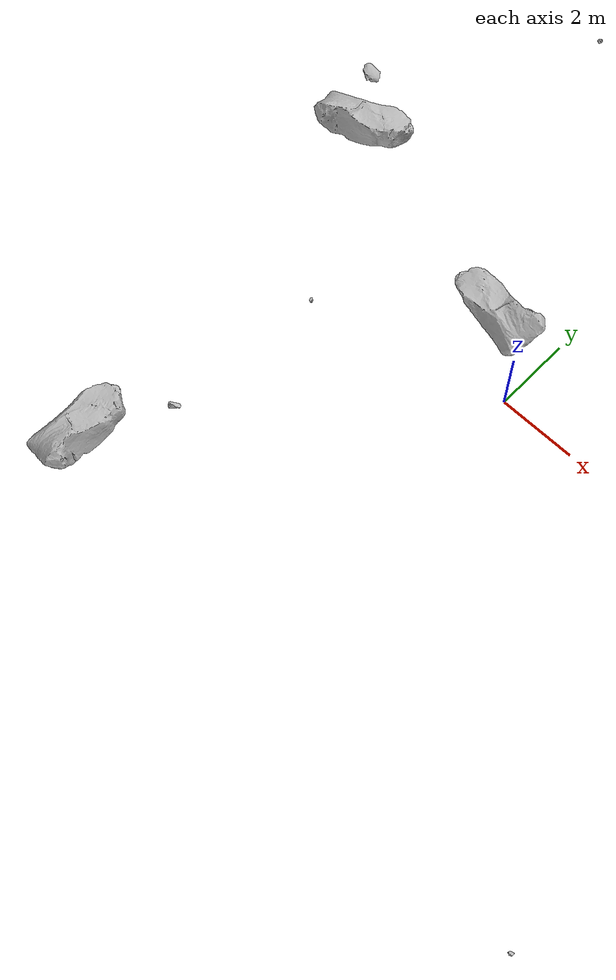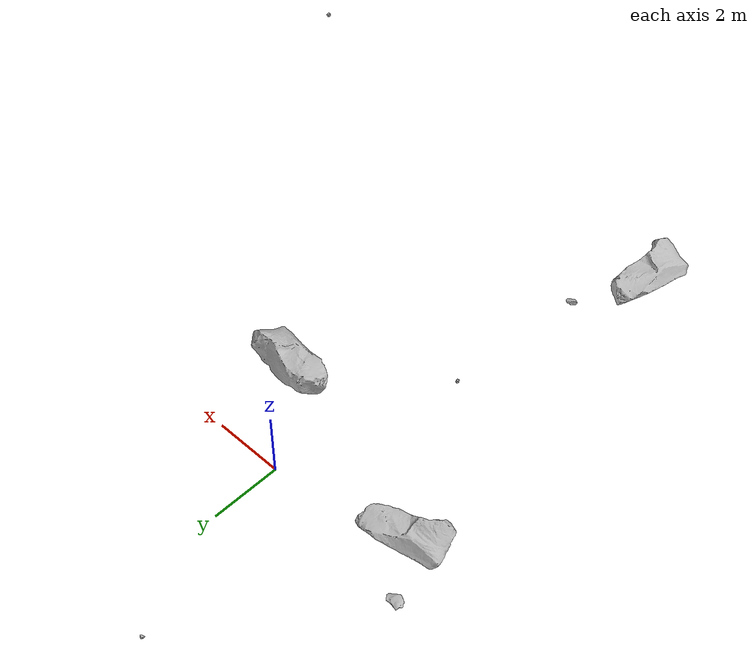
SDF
<sdf version="1.7">
 <world name="marsyard">
  <gravity>0 0 -9.81</gravity>
  <physics name="dart_physics" type="ignored">
   <max_step_size>0.003</max_step_size>
   <real_time_update_rate>333</real_time_update_rate>
   <real_time_factor>1.0</real_time_factor>
  </physics>
  <plugin filename="ignition-gazebo-physics-system" name="ignition::gazebo::systems::Physics"/>
  <plugin filename="ignition-gazebo-user-commands-system" name="ignition::gazebo::systems::UserCommands"/>
  <plugin filename="ignition-gazebo-scene-broadcaster-system" name="ignition::gazebo::systems::SceneBroadcaster"/>
  <plugin filename="ignition-gazebo-contact-system" name="ignition::gazebo::systems::Contact"/>
  <scene>
   <ambient>0.95 0.95 0.95 1</ambient>
   <background>0.70 0.70 0.70 1</background>
   <shadows>false</shadows>
  </scene>
  <light type="directional" name="sun">
   <cast_shadows>false</cast_shadows>
   <pose>0 0 30 0 0 0</pose>
   <diffuse>1 1 1 1</diffuse>
   <specular>0.15 0.15 0.15 1</specular>
   <direction>-0.35 0.1 -0.93</direction>
  </light>
  <model name="Rock_2">
   <static>true</static>
   <pose>-3.5111 -2.8405 4.0000 0.0000 0.0000 1.7620</pose>
   <link name="link">
    <visual name="visual">
     <geometry><mesh><uri>package://rock_generator/rocks_ws/rock_9/meshes/rock_9.stl</uri></mesh></geometry>
    </visual>
    <collision name="collision">
     <geometry><mesh><uri>package://rock_generator/rocks_ws/rock_9/meshes/rock_9.stl</uri></mesh></geometry>
    </collision>
   </link>
  </model>
  <model name="Rock_3">
   <static>true</static>
   <pose>8.0374 -9.7809 4.0000 0.0000 0.0000 -2.9149</pose>
   <link name="link">
    <visual name="visual">
     <geometry><mesh><uri>package://rock_generator/rocks_ws/rock_9/meshes/rock_9.stl</uri></mesh></geometry>
    </visual>
    <collision name="collision">
     <geometry><mesh><uri>package://rock_generator/rocks_ws/rock_9/meshes/rock_9.stl</uri></mesh></geometry>
    </collision>
   </link>
  </model>
  <model name="Rock_4">
   <static>true</static>
   <pose>-4.6807 -8.2353 4.0000 0.0000 0.0000 -1.4771</pose>
   <link name="link">
    <visual name="visual">
     <geometry><mesh><uri>package://rock_generator/rocks_ws/rock_4/meshes/rock_4.stl</uri></mesh></geometry>
    </visual>
    <collision name="collision">
     <geometry><mesh><uri>package://rock_generator/rocks_ws/rock_4/meshes/rock_4.stl</uri></mesh></geometry>
    </collision>
   </link>
  </model>
  <model name="Rock_5">
   <static>true</static>
   <pose>-6.7456 2.4469 4.0000 0.0000 0.0000 -0.4406</pose>
   <link name="link">
    <visual name="visual">
     <geometry><mesh><uri>package://rock_generator/rocks_ws/rock_8/meshes/rock_8.stl</uri></mesh></geometry>
    </visual>
    <collision name="collision">
     <geometry><mesh><uri>package://rock_generator/rocks_ws/rock_8/meshes/rock_8.stl</uri></mesh></geometry>
    </collision>
   </link>
  </model>
  <model name="Rock_7">
   <static>true</static>
   <pose>-3.5446 6.8243 4.0000 0.0000 0.0000 0.2901</pose>
   <link name="link">
    <visual name="visual">
     <geometry><mesh><uri>package://rock_generator/rocks_ws/rock_9/meshes/rock_9.stl</uri></mesh></geometry>
    </visual>
    <collision name="collision">
     <geometry><mesh><uri>package://rock_generator/rocks_ws/rock_9/meshes/rock_9.stl</uri></mesh></geometry>
    </collision>
   </link>
  </model>
  <model name="Rock_8">
   <static>true</static>
   <pose>-3.7833 -6.5532 4.0000 0.0000 0.0000 0.4972</pose>
   <link name="link">
    <visual name="visual">
     <geometry><mesh><uri>package://rock_generator/rocks_ws/rock_6/meshes/rock_6.stl</uri></mesh></geometry>
    </visual>
    <collision name="collision">
     <geometry><mesh><uri>package://rock_generator/rocks_ws/rock_6/meshes/rock_6.stl</uri></mesh></geometry>
    </collision>
   </link>
  </model>
  <model name="Rock_9">
   <static>true</static>
   <pose>-0.4755 -0.4291 4.0000 0.0000 0.0000 -0.0030</pose>
   <link name="link">
    <visual name="visual">
     <geometry><mesh><uri>package://rock_generator/rocks_ws/rock_4/meshes/rock_4.stl</uri></mesh></geometry>
    </visual>
    <collision name="collision">
     <geometry><mesh><uri>package://rock_generator/rocks_ws/rock_4/meshes/rock_4.stl</uri></mesh></geometry>
    </collision>
   </link>
  </model>
  <model name="Rock_11">
   <static>true</static>
   <pose>-5.7753 1.2122 4.0000 0.0000 0.0000 -2.6607</pose>
   <link name="link">
    <visual name="visual">
     <geometry><mesh><uri>package://rock_generator/rocks_ws/rock_4/meshes/rock_4.stl</uri></mesh></geometry>
    </visual>
    <collision name="collision">
     <geometry><mesh><uri>package://rock_generator/rocks_ws/rock_4/meshes/rock_4.stl</uri></mesh></geometry>
    </collision>
   </link>
  </model>
 </world>
</sdf>
